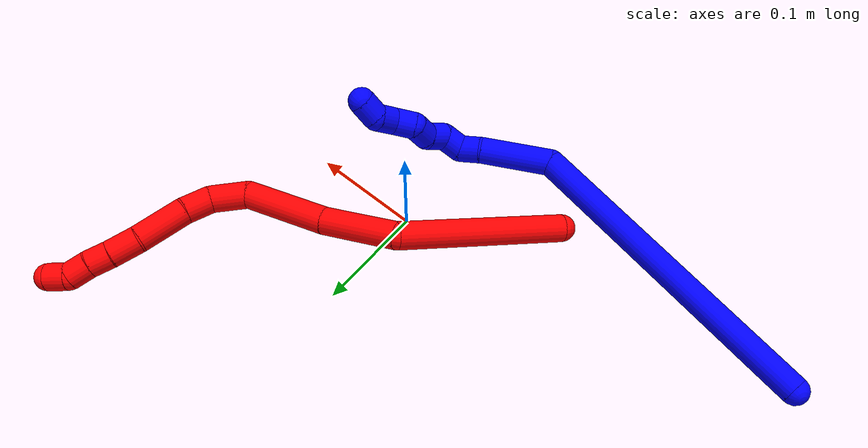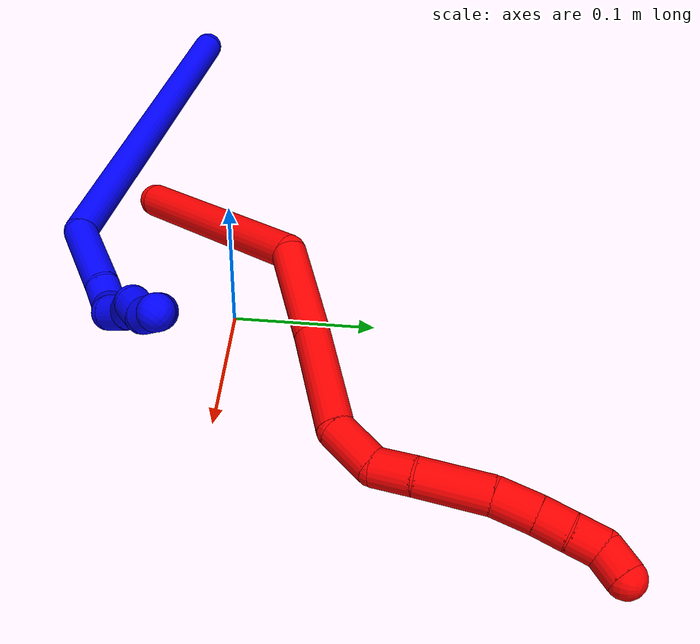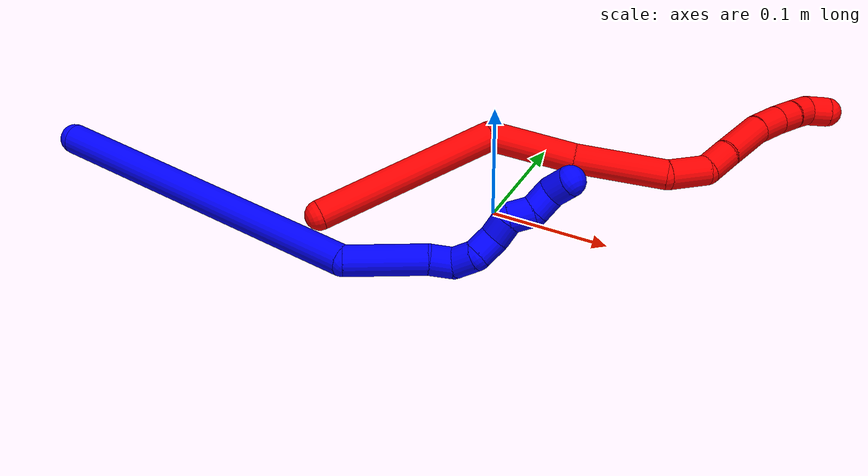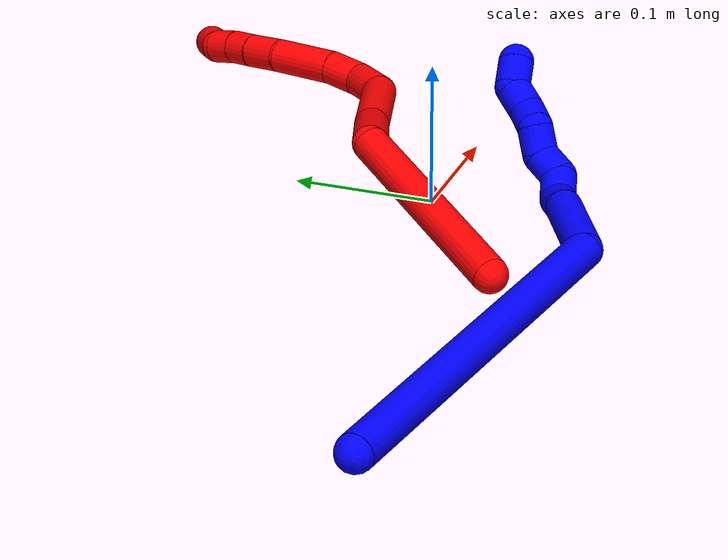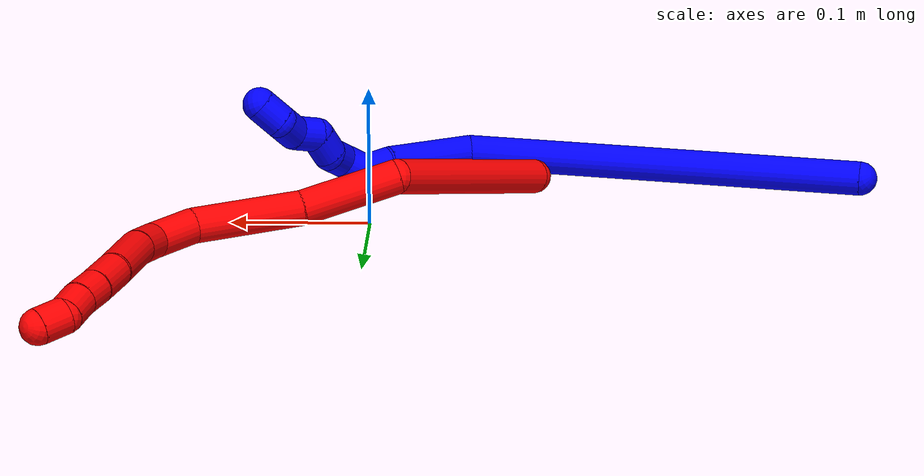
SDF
<sdf version="1.7">
 <world name="default">
  <model name="photoneo_s_sensor">
   <static>1</static>
   <pose>0 0 2 1.57079 1.57079 3.14159</pose>
   <link name="link">
    <inertial><mass>0.1</mass></inertial>
    <sensor name="sensor" type="depth">
     <update_rate>30</update_rate>
     <camera>
      <horizontal_fov>1.22</horizontal_fov>
      <image><width>1920</width><height>1200</height><format>B8G8R8</format></image>
      <clip><near>0.1</near><far>4</far></clip>
      <depth_camera><output>points</output></depth_camera>
     </camera>
     <plugin name="camera_plugin" filename="libgazebo_ros_depth_camera.so">
      <baseline>0.2</baseline>
      <alwaysOn>1</alwaysOn>
      <updateRate>0.0</updateRate>
      <cameraName>camera_ir</cameraName>
      <imageTopicName>/camera/color/image_raw</imageTopicName>
      <cameraInfoTopicName>/camera/color/camera_info</cameraInfoTopicName>
      <depthImageTopicName>/camera/depth/image_raw</depthImageTopicName>
      <depthImageCameraInfoTopicName>/camera/depth/camera_info</depthImageCameraInfoTopicName>
      <pointCloudTopicName>/camera/depth/points</pointCloudTopicName>
      <frameName>fr_optical</frameName>
      <pointCloudCutoff>0.1</pointCloudCutoff>
      <pointCloudCutoffMax>2.0</pointCloudCutoffMax>
      <distortionK1>0</distortionK1>
      <distortionK2>0</distortionK2>
      <distortionK3>0</distortionK3>
      <distortionT1>0</distortionT1>
      <distortionT2>0</distortionT2>
      <CxPrime>0</CxPrime>
      <Cx>0</Cx>
      <Cy>0</Cy>
      <focalLength>0</focalLength>
      <hackBaseline>0</hackBaseline>
     </plugin>
    </sensor>
   </link>
  </model>
  <model name="bin">
   <static>1</static>
   <link name="bottom">
    <collision name="collision-bottom">
     <pose>0 0 -0.01 0 -0 0</pose>
     <geometry><box><size>0.8 0.6 0.02</size></box></geometry>
     <surface>
      <friction><ode><mu>100</mu><mu2>100</mu2></ode></friction>
      <contact><collide_bitmask>65535</collide_bitmask></contact>
     </surface>
    </collision>
   </link>
   <link name="west_wall">
    <collision name="collision-west_wall">
     <pose>-0.41 0 0.1 0 -0 0</pose>
     <geometry><box><size>0.02 0.6 0.2</size></box></geometry>
     <surface>
      <friction><ode><mu>100</mu><mu2>100</mu2></ode></friction>
      <contact><collide_bitmask>65535</collide_bitmask></contact>
     </surface>
    </collision>
   </link>
   <link name="east_wall">
    <collision name="collision-east_wall">
     <pose>0.41 0 0.1 0 -0 0</pose>
     <geometry><box><size>0.02 0.6 0.2</size></box></geometry>
     <surface>
      <friction><ode><mu>100</mu><mu2>100</mu2></ode></friction>
      <contact><collide_bitmask>65535</collide_bitmask></contact>
     </surface>
    </collision>
   </link>
   <link name="south_wall">
    <collision name="collision-south_wall">
     <pose>0 -0.31 0.1 0 -0 0</pose>
     <geometry><box><size>0.8 0.02 0.2</size></box></geometry>
     <surface>
      <friction><ode><mu>100</mu><mu2>100</mu2></ode></friction>
      <contact><collide_bitmask>65535</collide_bitmask></contact>
     </surface>
    </collision>
   </link>
   <link name="north_wall">
    <collision name="collision-north_wall">
     <pose>0 0.31 0.1 0 -0 0</pose>
     <geometry><box><size>0.8 0.02 0.2</size></box></geometry>
     <surface>
      <friction><ode><mu>100</mu><mu2>100</mu2></ode></friction>
      <contact><collide_bitmask>65535</collide_bitmask></contact>
     </surface>
    </collision>
   </link>
  </model>
  <model name="1">
   <static>0</static>
   <link name="1">
    <collision name="collision-cylinder-e_1_1_4">
     <pose>0.072365 0.028467 -0.124202 -2.91628 0.516492 -2.33226</pose>
     <geometry><cylinder><radius>0.0125</radius><length>0.293074</length></cylinder></geometry>
     <surface>
      <friction><ode><mu>1.16</mu><mu2>1.16</mu2><slip1>0</slip1><slip2>0</slip2></ode></friction>
      <contact><ode><kp>1e+06</kp><kd>1</kd><max_vel>0</max_vel><min_depth>0.001</min_depth></ode></contact>
     </surface>
    </collision>
    <visual name="visual-cylinder-e_1_1_4">
     <pose>0.072365 0.028467 -0.124202 -2.91628 0.516492 -2.33226</pose>
     <geometry><cylinder><radius>0.0125</radius><length>0.293074</length></cylinder></geometry>
     <material><ambient>0 0 1 1</ambient></material>
    </visual>
    <collision name="collision-cylinder-e_2_4_5">
     <pose>0.161694 0.080956 -0.264025 -2.14739 0.534547 -0.934808</pose>
     <geometry><cylinder><radius>0.0125</radius><length>0.066599</length></cylinder></geometry>
     <surface>
      <friction><ode><mu>1.16</mu><mu2>1.16</mu2><slip1>0</slip1><slip2>0</slip2></ode></friction>
      <contact><ode><kp>1e+06</kp><kd>1</kd><max_vel>0</max_vel><min_depth>0.001</min_depth></ode></contact>
     </surface>
    </collision>
    <visual name="visual-cylinder-e_2_4_5">
     <pose>0.161694 0.080956 -0.264025 -2.14739 0.534547 -0.934808</pose>
     <geometry><cylinder><radius>0.0125</radius><length>0.066599</length></cylinder></geometry>
     <material><ambient>0 0 1 1</ambient></material>
    </visual>
    <collision name="collision-cylinder-e_3_5_6">
     <pose>0.182088 0.112719 -0.285136 -2.18767 0.346806 -0.653624</pose>
     <geometry><cylinder><radius>0.0125</radius><length>0.020183</length></cylinder></geometry>
     <surface>
      <friction><ode><mu>1.16</mu><mu2>1.16</mu2><slip1>0</slip1><slip2>0</slip2></ode></friction>
      <contact><ode><kp>1e+06</kp><kd>1</kd><max_vel>0</max_vel><min_depth>0.001</min_depth></ode></contact>
     </surface>
    </collision>
    <visual name="visual-cylinder-e_3_5_6">
     <pose>0.182088 0.112719 -0.285136 -2.18767 0.346806 -0.653624</pose>
     <geometry><cylinder><radius>0.0125</radius><length>0.020183</length></cylinder></geometry>
     <material><ambient>0 0 1 1</ambient></material>
    </visual>
    <collision name="collision-cylinder-e_4_6_7">
     <pose>0.194353 0.12378 -0.294014 -2.36628 1.07808 -1.9436</pose>
     <geometry><cylinder><radius>0.0125</radius><length>0.020055</length></cylinder></geometry>
     <surface>
      <friction><ode><mu>1.16</mu><mu2>1.16</mu2><slip1>0</slip1><slip2>0</slip2></ode></friction>
      <contact><ode><kp>1e+06</kp><kd>1</kd><max_vel>0</max_vel><min_depth>0.001</min_depth></ode></contact>
     </surface>
    </collision>
    <visual name="visual-cylinder-e_4_6_7">
     <pose>0.194353 0.12378 -0.294014 -2.36628 1.07808 -1.9436</pose>
     <geometry><cylinder><radius>0.0125</radius><length>0.020055</length></cylinder></geometry>
     <material><ambient>0 0 1 1</ambient></material>
    </visual>
    <collision name="collision-cylinder-e_5_7_8">
     <pose>0.210208 0.133831 -0.294947 -1.221 0.775202 -0.556459</pose>
     <geometry><cylinder><radius>0.0125</radius><length>0.02006</length></cylinder></geometry>
     <surface>
      <friction><ode><mu>1.16</mu><mu2>1.16</mu2><slip1>0</slip1><slip2>0</slip2></ode></friction>
      <contact><ode><kp>1e+06</kp><kd>1</kd><max_vel>0</max_vel><min_depth>0.001</min_depth></ode></contact>
     </surface>
    </collision>
    <visual name="visual-cylinder-e_5_7_8">
     <pose>0.210208 0.133831 -0.294947 -1.221 0.775202 -0.556459</pose>
     <geometry><cylinder><radius>0.0125</radius><length>0.02006</length></cylinder></geometry>
     <material><ambient>0 0 1 1</ambient></material>
    </visual>
    <collision name="collision-cylinder-e_6_8_9">
     <pose>0.226917 0.14236 -0.29072 -0.792971 1.31595 -0.625869</pose>
     <geometry><cylinder><radius>0.0125</radius><length>0.020025</length></cylinder></geometry>
     <surface>
      <friction><ode><mu>1.16</mu><mu2>1.16</mu2><slip1>0</slip1><slip2>0</slip2></ode></friction>
      <contact><ode><kp>1e+06</kp><kd>1</kd><max_vel>0</max_vel><min_depth>0.001</min_depth></ode></contact>
     </surface>
    </collision>
    <visual name="visual-cylinder-e_6_8_9">
     <pose>0.226917 0.14236 -0.29072 -0.792971 1.31595 -0.625869</pose>
     <geometry><cylinder><radius>0.0125</radius><length>0.020025</length></cylinder></geometry>
     <material><ambient>0 0 1 1</ambient></material>
    </visual>
    <collision name="collision-cylinder-e_7_9_10">
     <pose>0.243343 0.151028 -0.291677 -1.94879 0.739014 -1.0369</pose>
     <geometry><cylinder><radius>0.0125</radius><length>0.020003</length></cylinder></geometry>
     <surface>
      <friction><ode><mu>1.16</mu><mu2>1.16</mu2><slip1>0</slip1><slip2>0</slip2></ode></friction>
      <contact><ode><kp>1e+06</kp><kd>1</kd><max_vel>0</max_vel><min_depth>0.001</min_depth></ode></contact>
     </surface>
    </collision>
    <visual name="visual-cylinder-e_7_9_10">
     <pose>0.243343 0.151028 -0.291677 -1.94879 0.739014 -1.0369</pose>
     <geometry><cylinder><radius>0.0125</radius><length>0.020003</length></cylinder></geometry>
     <material><ambient>0 0 1 1</ambient></material>
    </visual>
    <collision name="collision-cylinder-e_8_10_11">
     <pose>0.2582 0.163217 -0.292003 -1.14652 0.947692 -0.639405</pose>
     <geometry><cylinder><radius>0.0125</radius><length>0.02</length></cylinder></geometry>
     <surface>
      <friction><ode><mu>1.16</mu><mu2>1.16</mu2><slip1>0</slip1><slip2>0</slip2></ode></friction>
      <contact><ode><kp>1e+06</kp><kd>1</kd><max_vel>0</max_vel><min_depth>0.001</min_depth></ode></contact>
     </surface>
    </collision>
    <visual name="visual-cylinder-e_8_10_11">
     <pose>0.2582 0.163217 -0.292003 -1.14652 0.947692 -0.639405</pose>
     <geometry><cylinder><radius>0.0125</radius><length>0.02</length></cylinder></geometry>
     <material><ambient>0 0 1 1</ambient></material>
    </visual>
    <collision name="collision-cylinder-e_9_11_2">
     <pose>0.275929 0.169769 -0.292082 -2.68004 1.29001 -2.53618</pose>
     <geometry><cylinder><radius>0.0125</radius><length>0.02</length></cylinder></geometry>
     <surface>
      <friction><ode><mu>1.16</mu><mu2>1.16</mu2><slip1>0</slip1><slip2>0</slip2></ode></friction>
      <contact><ode><kp>1e+06</kp><kd>1</kd><max_vel>0</max_vel><min_depth>0.001</min_depth></ode></contact>
     </surface>
    </collision>
    <visual name="visual-cylinder-e_9_11_2">
     <pose>0.275929 0.169769 -0.292082 -2.68004 1.29001 -2.53618</pose>
     <geometry><cylinder><radius>0.0125</radius><length>0.02</length></cylinder></geometry>
     <material><ambient>0 0 1 1</ambient></material>
    </visual>
    <collision name="collision-sphere-2">
     <pose>0.285538 0.171004 -0.294563 0 -0 0</pose>
     <geometry><sphere><radius>0.0125</radius></sphere></geometry>
     <surface>
      <friction><ode><mu>1.16</mu><mu2>1.16</mu2><slip1>0</slip1><slip2>0</slip2></ode></friction>
      <contact><ode><kp>1e+06</kp><kd>1</kd><max_vel>0</max_vel><min_depth>0.001</min_depth></ode></contact>
     </surface>
    </collision>
    <visual name="visual-sphere-2">
     <pose>0.285538 0.171004 -0.294563 0 -0 0</pose>
     <geometry><sphere><radius>0.0125</radius></sphere></geometry>
     <material><ambient>0 0 1 1</ambient></material>
    </visual>
    <collision name="collision-sphere-11">
     <pose>0.266321 0.168535 -0.289601 0 -0 0</pose>
     <geometry><sphere><radius>0.0125</radius></sphere></geometry>
     <surface>
      <friction><ode><mu>1.16</mu><mu2>1.16</mu2><slip1>0</slip1><slip2>0</slip2></ode></friction>
      <contact><ode><kp>1e+06</kp><kd>1</kd><max_vel>0</max_vel><min_depth>0.001</min_depth></ode></contact>
     </surface>
    </collision>
    <visual name="visual-sphere-11">
     <pose>0.266321 0.168535 -0.289601 0 -0 0</pose>
     <geometry><sphere><radius>0.0125</radius></sphere></geometry>
     <material><ambient>0 0 1 1</ambient></material>
    </visual>
    <collision name="collision-sphere-10">
     <pose>0.250079 0.157899 -0.294405 0 -0 0</pose>
     <geometry><sphere><radius>0.0125</radius></sphere></geometry>
     <surface>
      <friction><ode><mu>1.16</mu><mu2>1.16</mu2><slip1>0</slip1><slip2>0</slip2></ode></friction>
      <contact><ode><kp>1e+06</kp><kd>1</kd><max_vel>0</max_vel><min_depth>0.001</min_depth></ode></contact>
     </surface>
    </collision>
    <visual name="visual-sphere-10">
     <pose>0.250079 0.157899 -0.294405 0 -0 0</pose>
     <geometry><sphere><radius>0.0125</radius></sphere></geometry>
     <material><ambient>0 0 1 1</ambient></material>
    </visual>
    <collision name="collision-sphere-9">
     <pose>0.236606 0.144158 -0.288949 0 -0 0</pose>
     <geometry><sphere><radius>0.0125</radius></sphere></geometry>
     <surface>
      <friction><ode><mu>1.16</mu><mu2>1.16</mu2><slip1>0</slip1><slip2>0</slip2></ode></friction>
      <contact><ode><kp>1e+06</kp><kd>1</kd><max_vel>0</max_vel><min_depth>0.001</min_depth></ode></contact>
     </surface>
    </collision>
    <visual name="visual-sphere-9">
     <pose>0.236606 0.144158 -0.288949 0 -0 0</pose>
     <geometry><sphere><radius>0.0125</radius></sphere></geometry>
     <material><ambient>0 0 1 1</ambient></material>
    </visual>
    <collision name="collision-sphere-4">
     <pose>0.144729 0.056934 -0.248403 0 -0 0</pose>
     <geometry><sphere><radius>0.0125</radius></sphere></geometry>
     <surface>
      <friction><ode><mu>1.16</mu><mu2>1.16</mu2><slip1>0</slip1><slip2>0</slip2></ode></friction>
      <contact><ode><kp>1e+06</kp><kd>1</kd><max_vel>0</max_vel><min_depth>0.001</min_depth></ode></contact>
     </surface>
    </collision>
    <visual name="visual-sphere-4">
     <pose>0.144729 0.056934 -0.248403 0 -0 0</pose>
     <geometry><sphere><radius>0.0125</radius></sphere></geometry>
     <material><ambient>0 0 1 1</ambient></material>
    </visual>
    <collision name="collision-sphere-1">
     <geometry><sphere><radius>0.0125</radius></sphere></geometry>
     <surface>
      <friction><ode><mu>1.16</mu><mu2>1.16</mu2><slip1>0</slip1><slip2>0</slip2></ode></friction>
      <contact><ode><kp>1e+06</kp><kd>1</kd><max_vel>0</max_vel><min_depth>0.001</min_depth></ode></contact>
     </surface>
    </collision>
    <visual name="visual-sphere-1">
     <geometry><sphere><radius>0.0125</radius></sphere></geometry>
     <material><ambient>0 0 1 1</ambient></material>
    </visual>
    <collision name="collision-sphere-8">
     <pose>0.217228 0.140561 -0.292491 0 -0 0</pose>
     <geometry><sphere><radius>0.0125</radius></sphere></geometry>
     <surface>
      <friction><ode><mu>1.16</mu><mu2>1.16</mu2><slip1>0</slip1><slip2>0</slip2></ode></friction>
      <contact><ode><kp>1e+06</kp><kd>1</kd><max_vel>0</max_vel><min_depth>0.001</min_depth></ode></contact>
     </surface>
    </collision>
    <visual name="visual-sphere-8">
     <pose>0.217228 0.140561 -0.292491 0 -0 0</pose>
     <geometry><sphere><radius>0.0125</radius></sphere></geometry>
     <material><ambient>0 0 1 1</ambient></material>
    </visual>
    <collision name="collision-sphere-5">
     <pose>0.178659 0.104978 -0.279646 0 -0 0</pose>
     <geometry><sphere><radius>0.0125</radius></sphere></geometry>
     <surface>
      <friction><ode><mu>1.16</mu><mu2>1.16</mu2><slip1>0</slip1><slip2>0</slip2></ode></friction>
      <contact><ode><kp>1e+06</kp><kd>1</kd><max_vel>0</max_vel><min_depth>0.001</min_depth></ode></contact>
     </surface>
    </collision>
    <visual name="visual-sphere-5">
     <pose>0.178659 0.104978 -0.279646 0 -0 0</pose>
     <geometry><sphere><radius>0.0125</radius></sphere></geometry>
     <material><ambient>0 0 1 1</ambient></material>
    </visual>
    <collision name="collision-sphere-6">
     <pose>0.185518 0.12046 -0.290627 0 -0 0</pose>
     <geometry><sphere><radius>0.0125</radius></sphere></geometry>
     <surface>
      <friction><ode><mu>1.16</mu><mu2>1.16</mu2><slip1>0</slip1><slip2>0</slip2></ode></friction>
      <contact><ode><kp>1e+06</kp><kd>1</kd><max_vel>0</max_vel><min_depth>0.001</min_depth></ode></contact>
     </surface>
    </collision>
    <visual name="visual-sphere-6">
     <pose>0.185518 0.12046 -0.290627 0 -0 0</pose>
     <geometry><sphere><radius>0.0125</radius></sphere></geometry>
     <material><ambient>0 0 1 1</ambient></material>
    </visual>
    <collision name="collision-sphere-7">
     <pose>0.203188 0.1271 -0.297402 0 -0 0</pose>
     <geometry><sphere><radius>0.0125</radius></sphere></geometry>
     <surface>
      <friction><ode><mu>1.16</mu><mu2>1.16</mu2><slip1>0</slip1><slip2>0</slip2></ode></friction>
      <contact><ode><kp>1e+06</kp><kd>1</kd><max_vel>0</max_vel><min_depth>0.001</min_depth></ode></contact>
     </surface>
    </collision>
    <visual name="visual-sphere-7">
     <pose>0.203188 0.1271 -0.297402 0 -0 0</pose>
     <geometry><sphere><radius>0.0125</radius></sphere></geometry>
     <material><ambient>0 0 1 1</ambient></material>
    </visual>
    <inertial>
     <pose>0.127722 0.067417 -0.18978 0 -0 0</pose>
     <mass>0.5</mass>
     <inertia>
      <ixx>-0.002577</ixx>
      <ixy>0</ixy>
      <ixz>0</ixz>
      <iyy>0.000257</iyy>
      <iyz>0</iyz>
      <izz>-0.00152</izz>
     </inertia>
    </inertial>
   </link>
   <pose>-0.356738 -0.078107 0.012285 -0.678348 -1.01752 0.217203</pose>
  </model>
  <model name="2">
   <static>0</static>
   <link name="2">
    <collision name="collision-cylinder-e_1_1_4">
     <pose>-0.000426 9.1e-05 0.077282 -0.001178 -0.005506 3e-06</pose>
     <geometry><cylinder><radius>0.0125</radius><length>0.154567</length></cylinder></geometry>
     <surface>
      <friction><ode><mu>1.16</mu><mu2>1.16</mu2><slip1>0</slip1><slip2>0</slip2></ode></friction>
      <contact><ode><kp>1e+06</kp><kd>1</kd><max_vel>0</max_vel><min_depth>0.001</min_depth></ode></contact>
     </surface>
    </collision>
    <visual name="visual-cylinder-e_1_1_4">
     <pose>-0.000426 9.1e-05 0.077282 -0.001178 -0.005506 3e-06</pose>
     <geometry><cylinder><radius>0.0125</radius><length>0.154567</length></cylinder></geometry>
     <material><ambient>1 0 0 1</ambient></material>
    </visual>
    <collision name="collision-cylinder-e_2_4_5">
     <pose>0.020377 0.009594 0.181694 -0.333948 0.636598 -0.110957</pose>
     <geometry><cylinder><radius>0.0125</radius><length>0.071421</length></cylinder></geometry>
     <surface>
      <friction><ode><mu>1.16</mu><mu2>1.16</mu2><slip1>0</slip1><slip2>0</slip2></ode></friction>
      <contact><ode><kp>1e+06</kp><kd>1</kd><max_vel>0</max_vel><min_depth>0.001</min_depth></ode></contact>
     </surface>
    </collision>
    <visual name="visual-cylinder-e_2_4_5">
     <pose>0.020377 0.009594 0.181694 -0.333948 0.636598 -0.110957</pose>
     <geometry><cylinder><radius>0.0125</radius><length>0.071421</length></cylinder></geometry>
     <material><ambient>1 0 0 1</ambient></material>
    </visual>
    <collision name="collision-cylinder-e_3_5_6">
     <pose>0.065518 0.023317 0.239145 -0.14121 0.662898 -0.048668</pose>
     <geometry><cylinder><radius>0.0125</radius><length>0.077713</length></cylinder></geometry>
     <surface>
      <friction><ode><mu>1.16</mu><mu2>1.16</mu2><slip1>0</slip1><slip2>0</slip2></ode></friction>
      <contact><ode><kp>1e+06</kp><kd>1</kd><max_vel>0</max_vel><min_depth>0.001</min_depth></ode></contact>
     </surface>
    </collision>
    <visual name="visual-cylinder-e_3_5_6">
     <pose>0.065518 0.023317 0.239145 -0.14121 0.662898 -0.048668</pose>
     <geometry><cylinder><radius>0.0125</radius><length>0.077713</length></cylinder></geometry>
     <material><ambient>1 0 0 1</ambient></material>
    </visual>
    <collision name="collision-cylinder-e_4_6_7">
     <pose>0.092435 0.032418 0.286077 -0.280801 0.172075 -0.024378</pose>
     <geometry><cylinder><radius>0.0125</radius><length>0.035092</length></cylinder></geometry>
     <surface>
      <friction><ode><mu>1.16</mu><mu2>1.16</mu2><slip1>0</slip1><slip2>0</slip2></ode></friction>
      <contact><ode><kp>1e+06</kp><kd>1</kd><max_vel>0</max_vel><min_depth>0.001</min_depth></ode></contact>
     </surface>
    </collision>
    <visual name="visual-cylinder-e_4_6_7">
     <pose>0.092435 0.032418 0.286077 -0.280801 0.172075 -0.024378</pose>
     <geometry><cylinder><radius>0.0125</radius><length>0.035092</length></cylinder></geometry>
     <material><ambient>1 0 0 1</ambient></material>
    </visual>
    <collision name="collision-cylinder-e_5_7_8">
     <pose>0.090829 0.039699 0.314906 -0.201072 -0.35412 0.036096</pose>
     <geometry><cylinder><radius>0.0125</radius><length>0.02659</length></cylinder></geometry>
     <surface>
      <friction><ode><mu>1.16</mu><mu2>1.16</mu2><slip1>0</slip1><slip2>0</slip2></ode></friction>
      <contact><ode><kp>1e+06</kp><kd>1</kd><max_vel>0</max_vel><min_depth>0.001</min_depth></ode></contact>
     </surface>
    </collision>
    <visual name="visual-cylinder-e_5_7_8">
     <pose>0.090829 0.039699 0.314906 -0.201072 -0.35412 0.036096</pose>
     <geometry><cylinder><radius>0.0125</radius><length>0.02659</length></cylinder></geometry>
     <material><ambient>1 0 0 1</ambient></material>
    </visual>
    <collision name="collision-cylinder-e_6_8_9">
     <pose>0.077091 0.049874 0.347375 -0.362679 -0.398844 0.074081</pose>
     <geometry><cylinder><radius>0.0125</radius><length>0.047007</length></cylinder></geometry>
     <surface>
      <friction><ode><mu>1.16</mu><mu2>1.16</mu2><slip1>0</slip1><slip2>0</slip2></ode></friction>
      <contact><ode><kp>1e+06</kp><kd>1</kd><max_vel>0</max_vel><min_depth>0.001</min_depth></ode></contact>
     </surface>
    </collision>
    <visual name="visual-cylinder-e_6_8_9">
     <pose>0.077091 0.049874 0.347375 -0.362679 -0.398844 0.074081</pose>
     <geometry><cylinder><radius>0.0125</radius><length>0.047007</length></cylinder></geometry>
     <material><ambient>1 0 0 1</ambient></material>
    </visual>
    <collision name="collision-cylinder-e_7_9_10">
     <pose>0.064751 0.062963 0.379706 -0.420643 -0.238101 0.05106</pose>
     <geometry><cylinder><radius>0.0125</radius><length>0.027239</length></cylinder></geometry>
     <surface>
      <friction><ode><mu>1.16</mu><mu2>1.16</mu2><slip1>0</slip1><slip2>0</slip2></ode></friction>
      <contact><ode><kp>1e+06</kp><kd>1</kd><max_vel>0</max_vel><min_depth>0.001</min_depth></ode></contact>
     </surface>
    </collision>
    <visual name="visual-cylinder-e_7_9_10">
     <pose>0.064751 0.062963 0.379706 -0.420643 -0.238101 0.05106</pose>
     <geometry><cylinder><radius>0.0125</radius><length>0.027239</length></cylinder></geometry>
     <material><ambient>1 0 0 1</ambient></material>
    </visual>
    <collision name="collision-cylinder-e_8_10_11">
     <pose>0.059912 0.072309 0.400885 -0.408846 -0.162604 0.033782</pose>
     <geometry><cylinder><radius>0.0125</radius><length>0.020094</length></cylinder></geometry>
     <surface>
      <friction><ode><mu>1.16</mu><mu2>1.16</mu2><slip1>0</slip1><slip2>0</slip2></ode></friction>
      <contact><ode><kp>1e+06</kp><kd>1</kd><max_vel>0</max_vel><min_depth>0.001</min_depth></ode></contact>
     </surface>
    </collision>
    <visual name="visual-cylinder-e_8_10_11">
     <pose>0.059912 0.072309 0.400885 -0.408846 -0.162604 0.033782</pose>
     <geometry><cylinder><radius>0.0125</radius><length>0.020094</length></cylinder></geometry>
     <material><ambient>1 0 0 1</ambient></material>
    </visual>
    <collision name="collision-cylinder-e_9_11_12">
     <pose>0.056195 0.081206 0.418522 -0.525785 -0.20869 0.056353</pose>
     <geometry><cylinder><radius>0.0125</radius><length>0.020185</length></cylinder></geometry>
     <surface>
      <friction><ode><mu>1.16</mu><mu2>1.16</mu2><slip1>0</slip1><slip2>0</slip2></ode></friction>
      <contact><ode><kp>1e+06</kp><kd>1</kd><max_vel>0</max_vel><min_depth>0.001</min_depth></ode></contact>
     </surface>
    </collision>
    <visual name="visual-cylinder-e_9_11_12">
     <pose>0.056195 0.081206 0.418522 -0.525785 -0.20869 0.056353</pose>
     <geometry><cylinder><radius>0.0125</radius><length>0.020185</length></cylinder></geometry>
     <material><ambient>1 0 0 1</ambient></material>
    </visual>
    <collision name="collision-cylinder-e_10_12_2">
     <pose>0.057518 0.089397 0.435939 -0.349508 0.346745 -0.061821</pose>
     <geometry><cylinder><radius>0.0125</radius><length>0.020092</length></cylinder></geometry>
     <surface>
      <friction><ode><mu>1.16</mu><mu2>1.16</mu2><slip1>0</slip1><slip2>0</slip2></ode></friction>
      <contact><ode><kp>1e+06</kp><kd>1</kd><max_vel>0</max_vel><min_depth>0.001</min_depth></ode></contact>
     </surface>
    </collision>
    <visual name="visual-cylinder-e_10_12_2">
     <pose>0.057518 0.089397 0.435939 -0.349508 0.346745 -0.061821</pose>
     <geometry><cylinder><radius>0.0125</radius><length>0.020092</length></cylinder></geometry>
     <material><ambient>1 0 0 1</ambient></material>
    </visual>
    <collision name="collision-sphere-2">
     <pose>0.060932 0.092632 0.444816 0 -0 0</pose>
     <geometry><sphere><radius>0.0125</radius></sphere></geometry>
     <surface>
      <friction><ode><mu>1.16</mu><mu2>1.16</mu2><slip1>0</slip1><slip2>0</slip2></ode></friction>
      <contact><ode><kp>1e+06</kp><kd>1</kd><max_vel>0</max_vel><min_depth>0.001</min_depth></ode></contact>
     </surface>
    </collision>
    <visual name="visual-sphere-2">
     <pose>0.060932 0.092632 0.444816 0 -0 0</pose>
     <geometry><sphere><radius>0.0125</radius></sphere></geometry>
     <material><ambient>1 0 0 1</ambient></material>
    </visual>
    <collision name="collision-sphere-12">
     <pose>0.054104 0.086161 0.427062 0 -0 0</pose>
     <geometry><sphere><radius>0.0125</radius></sphere></geometry>
     <surface>
      <friction><ode><mu>1.16</mu><mu2>1.16</mu2><slip1>0</slip1><slip2>0</slip2></ode></friction>
      <contact><ode><kp>1e+06</kp><kd>1</kd><max_vel>0</max_vel><min_depth>0.001</min_depth></ode></contact>
     </surface>
    </collision>
    <visual name="visual-sphere-12">
     <pose>0.054104 0.086161 0.427062 0 -0 0</pose>
     <geometry><sphere><radius>0.0125</radius></sphere></geometry>
     <material><ambient>1 0 0 1</ambient></material>
    </visual>
    <collision name="collision-sphere-11">
     <pose>0.058286 0.076251 0.409983 0 -0 0</pose>
     <geometry><sphere><radius>0.0125</radius></sphere></geometry>
     <surface>
      <friction><ode><mu>1.16</mu><mu2>1.16</mu2><slip1>0</slip1><slip2>0</slip2></ode></friction>
      <contact><ode><kp>1e+06</kp><kd>1</kd><max_vel>0</max_vel><min_depth>0.001</min_depth></ode></contact>
     </surface>
    </collision>
    <visual name="visual-sphere-11">
     <pose>0.058286 0.076251 0.409983 0 -0 0</pose>
     <geometry><sphere><radius>0.0125</radius></sphere></geometry>
     <material><ambient>1 0 0 1</ambient></material>
    </visual>
    <collision name="collision-sphere-10">
     <pose>0.061539 0.068368 0.391788 0 -0 0</pose>
     <geometry><sphere><radius>0.0125</radius></sphere></geometry>
     <surface>
      <friction><ode><mu>1.16</mu><mu2>1.16</mu2><slip1>0</slip1><slip2>0</slip2></ode></friction>
      <contact><ode><kp>1e+06</kp><kd>1</kd><max_vel>0</max_vel><min_depth>0.001</min_depth></ode></contact>
     </surface>
    </collision>
    <visual name="visual-sphere-10">
     <pose>0.061539 0.068368 0.391788 0 -0 0</pose>
     <geometry><sphere><radius>0.0125</radius></sphere></geometry>
     <material><ambient>1 0 0 1</ambient></material>
    </visual>
    <collision name="collision-sphere-9">
     <pose>0.067964 0.057558 0.367625 0 -0 0</pose>
     <geometry><sphere><radius>0.0125</radius></sphere></geometry>
     <surface>
      <friction><ode><mu>1.16</mu><mu2>1.16</mu2><slip1>0</slip1><slip2>0</slip2></ode></friction>
      <contact><ode><kp>1e+06</kp><kd>1</kd><max_vel>0</max_vel><min_depth>0.001</min_depth></ode></contact>
     </surface>
    </collision>
    <visual name="visual-sphere-9">
     <pose>0.067964 0.057558 0.367625 0 -0 0</pose>
     <geometry><sphere><radius>0.0125</radius></sphere></geometry>
     <material><ambient>1 0 0 1</ambient></material>
    </visual>
    <collision name="collision-sphere-4">
     <pose>-0.000851 0.000182 0.154565 0 -0 0</pose>
     <geometry><sphere><radius>0.0125</radius></sphere></geometry>
     <surface>
      <friction><ode><mu>1.16</mu><mu2>1.16</mu2><slip1>0</slip1><slip2>0</slip2></ode></friction>
      <contact><ode><kp>1e+06</kp><kd>1</kd><max_vel>0</max_vel><min_depth>0.001</min_depth></ode></contact>
     </surface>
    </collision>
    <visual name="visual-sphere-4">
     <pose>-0.000851 0.000182 0.154565 0 -0 0</pose>
     <geometry><sphere><radius>0.0125</radius></sphere></geometry>
     <material><ambient>1 0 0 1</ambient></material>
    </visual>
    <collision name="collision-sphere-1">
     <geometry><sphere><radius>0.0125</radius></sphere></geometry>
     <surface>
      <friction><ode><mu>1.16</mu><mu2>1.16</mu2><slip1>0</slip1><slip2>0</slip2></ode></friction>
      <contact><ode><kp>1e+06</kp><kd>1</kd><max_vel>0</max_vel><min_depth>0.001</min_depth></ode></contact>
     </surface>
    </collision>
    <visual name="visual-sphere-1">
     <geometry><sphere><radius>0.0125</radius></sphere></geometry>
     <material><ambient>1 0 0 1</ambient></material>
    </visual>
    <collision name="collision-sphere-8">
     <pose>0.086219 0.04219 0.327125 0 -0 0</pose>
     <geometry><sphere><radius>0.0125</radius></sphere></geometry>
     <surface>
      <friction><ode><mu>1.16</mu><mu2>1.16</mu2><slip1>0</slip1><slip2>0</slip2></ode></friction>
      <contact><ode><kp>1e+06</kp><kd>1</kd><max_vel>0</max_vel><min_depth>0.001</min_depth></ode></contact>
     </surface>
    </collision>
    <visual name="visual-sphere-8">
     <pose>0.086219 0.04219 0.327125 0 -0 0</pose>
     <geometry><sphere><radius>0.0125</radius></sphere></geometry>
     <material><ambient>1 0 0 1</ambient></material>
    </visual>
    <collision name="collision-sphere-5">
     <pose>0.041606 0.019007 0.208823 0 -0 0</pose>
     <geometry><sphere><radius>0.0125</radius></sphere></geometry>
     <surface>
      <friction><ode><mu>1.16</mu><mu2>1.16</mu2><slip1>0</slip1><slip2>0</slip2></ode></friction>
      <contact><ode><kp>1e+06</kp><kd>1</kd><max_vel>0</max_vel><min_depth>0.001</min_depth></ode></contact>
     </surface>
    </collision>
    <visual name="visual-sphere-5">
     <pose>0.041606 0.019007 0.208823 0 -0 0</pose>
     <geometry><sphere><radius>0.0125</radius></sphere></geometry>
     <material><ambient>1 0 0 1</ambient></material>
    </visual>
    <collision name="collision-sphere-6">
     <pose>0.089431 0.027628 0.269467 0 -0 0</pose>
     <geometry><sphere><radius>0.0125</radius></sphere></geometry>
     <surface>
      <friction><ode><mu>1.16</mu><mu2>1.16</mu2><slip1>0</slip1><slip2>0</slip2></ode></friction>
      <contact><ode><kp>1e+06</kp><kd>1</kd><max_vel>0</max_vel><min_depth>0.001</min_depth></ode></contact>
     </surface>
    </collision>
    <visual name="visual-sphere-6">
     <pose>0.089431 0.027628 0.269467 0 -0 0</pose>
     <geometry><sphere><radius>0.0125</radius></sphere></geometry>
     <material><ambient>1 0 0 1</ambient></material>
    </visual>
    <collision name="collision-sphere-7">
     <pose>0.095439 0.037209 0.302687 0 -0 0</pose>
     <geometry><sphere><radius>0.0125</radius></sphere></geometry>
     <surface>
      <friction><ode><mu>1.16</mu><mu2>1.16</mu2><slip1>0</slip1><slip2>0</slip2></ode></friction>
      <contact><ode><kp>1e+06</kp><kd>1</kd><max_vel>0</max_vel><min_depth>0.001</min_depth></ode></contact>
     </surface>
    </collision>
    <visual name="visual-sphere-7">
     <pose>0.095439 0.037209 0.302687 0 -0 0</pose>
     <geometry><sphere><radius>0.0125</radius></sphere></geometry>
     <material><ambient>1 0 0 1</ambient></material>
    </visual>
    <inertial>
     <pose>0.042043 0.027305 0.227706 0 -0 0</pose>
     <mass>0.5</mass>
     <inertia>
      <ixx>0.000398</ixx>
      <ixy>0</ixy>
      <ixz>0</ixz>
      <iyy>0.000415</iyy>
      <iyz>0</iyz>
      <izz>-2.6e-05</izz>
     </inertia>
    </inertial>
   </link>
   <pose>-0.116688 -0.079748 0.011496 -1.32899 0.265614 -0.624687</pose>
  </model>
 </world>
</sdf>
